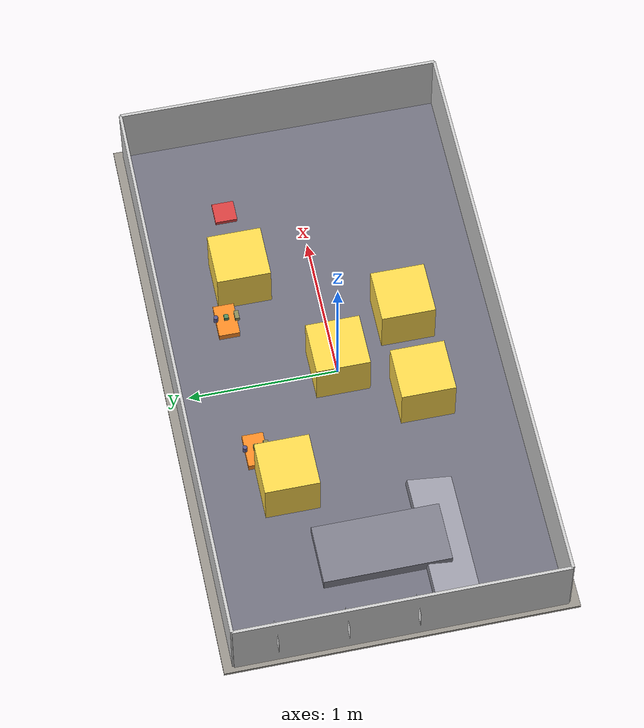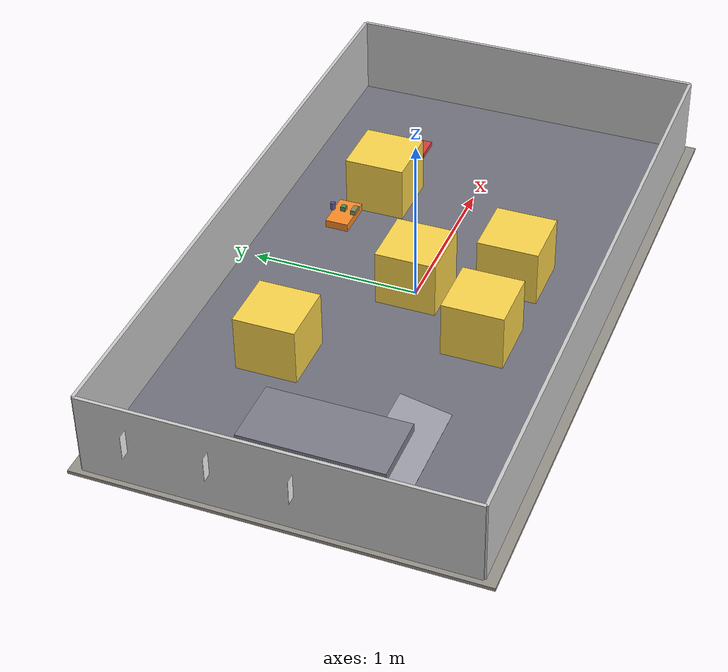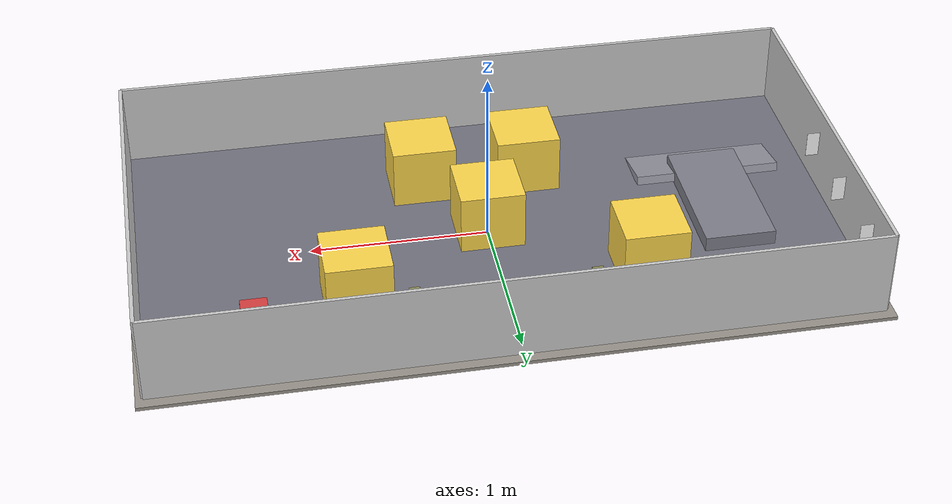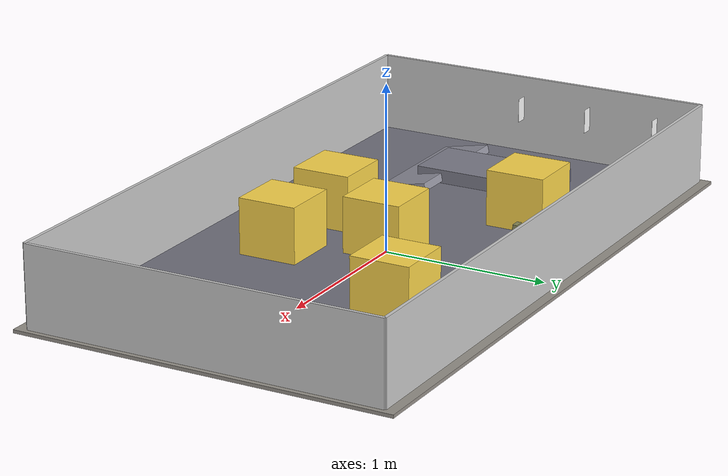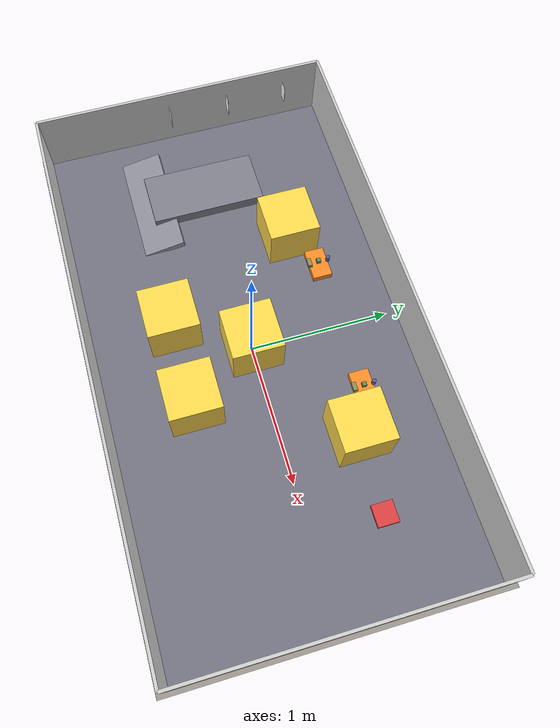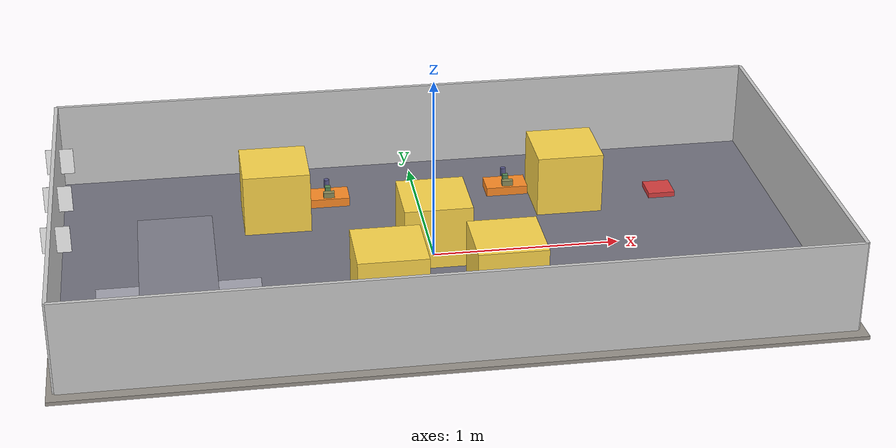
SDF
<?xml version="1.0" encoding="UTF-8"?>
<!--
  ROSLander 月球探索比赛场景
  场地: 3.92m × 2.16m
  围挡高度: 500mm
  参考: 第28届CRAIC机器人任务挑战赛（复合机器人月球探索）线上比赛规则
-->
<sdf version="1.6">
  <world name="moon_exploration">

    <!-- 物理参数                                     -->
    <physics type="ode">
      <max_step_size>0.001</max_step_size>
      <real_time_factor>1</real_time_factor>
      <real_time_update_rate>1000</real_time_update_rate>
      <gravity>0 0 -9.81</gravity>
    </physics>

    <!-- 光照（模拟月球环境）                          -->
    <scene>
      <ambient>0.3 0.3 0.35 1.0</ambient>
      <background>0.05 0.05 0.1 1.0</background>
      <shadows>true</shadows>
    </scene>

    <!-- 太阳光 -->
    <light name="sun" type="directional">
      <pose>5 5 10 0 0 0</pose>
      <diffuse>0.8 0.8 0.85 1</diffuse>
      <specular>0.3 0.3 0.35 1</specular>
      <direction>-0.5 -0.5 -1</direction>
      <cast_shadows>true</cast_shadows>
    </light>

    <!-- 地面 - 月球表面                              -->
    <model name="moon_ground">
      <static>true</static>
      <pose>0 0 0 0 0 0</pose>
      <link name="ground_link">
        <collision name="ground_collision">
          <geometry>
            <box>
              <size>4.0 2.3 0.02</size>
            </box>
          </geometry>
          <surface>
            <friction>
              <ode>
                <mu>0.8</mu>
                <mu2>0.8</mu2>
              </ode>
            </friction>
          </surface>
        </collision>
        <visual name="ground_visual">
          <geometry>
            <box>
              <size>4.0 2.3 0.02</size>
            </box>
          </geometry>
          <material>
            <ambient>0.5 0.48 0.45 1</ambient>
            <diffuse>0.6 0.58 0.55 1</diffuse>
            <specular>0.1 0.1 0.1 1</specular>
          </material>
        </visual>
      </link>
    </model>

    <!-- 月球探索地图（无纺布 - 视觉标记）            -->
    <model name="moon_map">
      <static>true</static>
      <pose>0 0 0.021 0 0 0</pose>
      <link name="map_link">
        <visual name="map_visual">
          <geometry>
            <box>
              <size>3.92 2.16 0.001</size>
            </box>
          </geometry>
          <material>
            <ambient>0.35 0.35 0.4 1</ambient>
            <diffuse>0.45 0.45 0.5 1</diffuse>
            <specular>0.05 0.05 0.05 1</specular>
          </material>
        </visual>
      </link>
    </model>

    <!-- 围挡 - 扁铝型材 (500mm高)                    -->
    <!-- 长边1 (X: -1.96, Y: -1.08 to 1.08) -->
    <model name="wall_left">
      <static>true</static>
      <pose>-1.96 0 0.25 0 0 0</pose>
      <link name="link">
        <collision name="collision">
          <geometry><box><size>0.02 2.16 0.5</size></box></geometry>
        </collision>
        <visual name="visual">
          <geometry><box><size>0.02 2.16 0.5</size></box></geometry>
          <material>
            <ambient>0.7 0.7 0.7 1</ambient>
            <diffuse>0.8 0.8 0.8 1</diffuse>
          </material>
        </visual>
      </link>
    </model>

    <!-- 长边2 -->
    <model name="wall_right">
      <static>true</static>
      <pose>1.96 0 0.25 0 0 0</pose>
      <link name="link">
        <collision name="collision">
          <geometry><box><size>0.02 2.16 0.5</size></box></geometry>
        </collision>
        <visual name="visual">
          <geometry><box><size>0.02 2.16 0.5</size></box></geometry>
          <material>
            <ambient>0.7 0.7 0.7 1</ambient>
            <diffuse>0.8 0.8 0.8 1</diffuse>
          </material>
        </visual>
      </link>
    </model>

    <!-- 短边1 -->
    <model name="wall_top">
      <static>true</static>
      <pose>0 1.08 0.25 0 0 0</pose>
      <link name="link">
        <collision name="collision">
          <geometry><box><size>3.92 0.02 0.5</size></box></geometry>
        </collision>
        <visual name="visual">
          <geometry><box><size>3.92 0.02 0.5</size></box></geometry>
          <material>
            <ambient>0.7 0.7 0.7 1</ambient>
            <diffuse>0.8 0.8 0.8 1</diffuse>
          </material>
        </visual>
      </link>
    </model>

    <!-- 短边2 -->
    <model name="wall_bottom">
      <static>true</static>
      <pose>0 -1.08 0.25 0 0 0</pose>
      <link name="link">
        <collision name="collision">
          <geometry><box><size>3.92 0.02 0.5</size></box></geometry>
        </collision>
        <visual name="visual">
          <geometry><box><size>3.92 0.02 0.5</size></box></geometry>
          <material>
            <ambient>0.7 0.7 0.7 1</ambient>
            <diffuse>0.8 0.8 0.8 1</diffuse>
          </material>
        </visual>
      </link>
    </model>

    <!-- 道具区：以下道具的具体位置根据比赛俯视图估算  -->
    <!-- 用户需根据实际地图在 Gazebo 中微调           -->

    <!-- ---- 月球基地（斜坡平台）837×400×105mm ---- -->
    <!-- 放在场地一侧，机器人出发位置 -->
    <model name="moon_base">
      <static>true</static>
      <pose>-1.35 0 0.0525 0 0 -1.5708</pose>
      <link name="base_link">
        <collision name="collision">
          <geometry><box><size>0.837 0.4 0.105</size></box></geometry>
          <surface>
            <friction><ode><mu>0.6</mu><mu2>0.6</mu2></ode></friction>
          </surface>
        </collision>
        <visual name="visual">
          <geometry><box><size>0.837 0.4 0.105</size></box></geometry>
          <material>
            <ambient>0.4 0.4 0.45 1</ambient>
            <diffuse>0.5 0.5 0.55 1</diffuse>
          </material>
        </visual>
      </link>
    </model>

    <!-- 斜坡（放在月球基地下方） -->
    <model name="moon_base_ramp">
      <static>true</static>
      <pose>-1.35 -0.4 0.03 0.2 0 0</pose>
      <link name="ramp_link">
        <collision name="collision">
          <geometry><box><size>0.837 0.3 0.05</size></box></geometry>
          <surface>
            <friction><ode><mu>0.7</mu><mu2>0.7</mu2></ode></friction>
          </surface>
        </collision>
        <visual name="visual">
          <geometry><box><size>0.837 0.3 0.05</size></box></geometry>
          <material>
            <ambient>0.5 0.5 0.55 1</ambient>
            <diffuse>0.6 0.6 0.65 1</diffuse>
          </material>
        </visual>
      </link>
    </model>

    <!-- ---- 月球资源库（收纳盒）148×148×50mm ---- -->
    <model name="storage_box">
      <static>true</static>
      <pose>1.35 0.5 0.025 0 0 0</pose>
      <link name="box_link">
        <collision name="collision">
          <geometry><box><size>0.148 0.148 0.05</size></box></geometry>
        </collision>
        <visual name="visual">
          <geometry><box><size>0.148 0.148 0.05</size></box></geometry>
          <material>
            <ambient>0.8 0.2 0.2 1</ambient>
            <diffuse>0.85 0.25 0.25 1</diffuse>
          </material>
        </visual>
      </link>
    </model>

    <!-- ---- 固定障碍物（360×360×360mm）3个 ---- -->
    <model name="fixed_obstacle_1">
      <static>true</static>
      <pose>-0.3 -0.5 0.18 0 0 0</pose>
      <link name="link">
        <collision name="collision">
          <geometry><box><size>0.36 0.36 0.36</size></box></geometry>
        </collision>
        <visual name="visual">
          <geometry><box><size>0.36 0.36 0.36</size></box></geometry>
          <material>
            <ambient>1 0.8 0.2 1</ambient>
            <diffuse>1 0.85 0.3 1</diffuse>
          </material>
        </visual>
      </link>
    </model>

    <model name="fixed_obstacle_2">
      <static>true</static>
      <pose>0.3 -0.5 0.18 0 0 0</pose>
      <link name="link">
        <collision name="collision">
          <geometry><box><size>0.36 0.36 0.36</size></box></geometry>
        </collision>
        <visual name="visual">
          <geometry><box><size>0.36 0.36 0.36</size></box></geometry>
          <material>
            <ambient>1 0.8 0.2 1</ambient>
            <diffuse>1 0.85 0.3 1</diffuse>
          </material>
        </visual>
      </link>
    </model>

    <model name="fixed_obstacle_3">
      <static>true</static>
      <pose>0 0 0.18 0 0 0</pose>
      <link name="link">
        <collision name="collision">
          <geometry><box><size>0.36 0.36 0.36</size></box></geometry>
        </collision>
        <visual name="visual">
          <geometry><box><size>0.36 0.36 0.36</size></box></geometry>
          <material>
            <ambient>1 0.8 0.2 1</ambient>
            <diffuse>1 0.85 0.3 1</diffuse>
          </material>
        </visual>
      </link>
    </model>

    <!-- ---- 随机障碍物位置（数字格1-5，示例2个） ---- -->
    <model name="random_obstacle_1">
      <static>true</static>
      <pose>-0.8 0.5 0.18 0 0 0</pose>
      <link name="link">
        <collision name="collision">
          <geometry><box><size>0.36 0.36 0.36</size></box></geometry>
        </collision>
        <visual name="visual">
          <geometry><box><size>0.36 0.36 0.36</size></box></geometry>
          <material>
            <ambient>1 0.8 0.2 1</ambient>
            <diffuse>1 0.85 0.3 1</diffuse>
          </material>
        </visual>
      </link>
    </model>

    <model name="random_obstacle_2">
      <static>true</static>
      <pose>0.8 0.5 0.18 0 0 0</pose>
      <link name="link">
        <collision name="collision">
          <geometry><box><size>0.36 0.36 0.36</size></box></geometry>
        </collision>
        <visual name="visual">
          <geometry><box><size>0.36 0.36 0.36</size></box></geometry>
          <material>
            <ambient>1 0.8 0.2 1</ambient>
            <diffuse>1 0.85 0.3 1</diffuse>
          </material>
        </visual>
      </link>
    </model>

    <!-- ---- 矿石采集平台（EVA方块）230×140×70mm 2个 ---- -->
    <model name="ore_platform_1">
      <static>true</static>
      <pose>-0.5 0.65 0.035 0 0 0</pose>
      <link name="link">
        <collision name="collision">
          <geometry><box><size>0.23 0.14 0.07</size></box></geometry>
        </collision>
        <visual name="visual">
          <geometry><box><size>0.23 0.14 0.07</size></box></geometry>
          <material>
            <ambient>1 0.5 0.1 1</ambient>
            <diffuse>1 0.55 0.15 1</diffuse>
          </material>
        </visual>
      </link>
    </model>

    <model name="ore_platform_2">
      <static>true</static>
      <pose>0.5 0.65 0.035 0 0 0</pose>
      <link name="link">
        <collision name="collision">
          <geometry><box><size>0.23 0.14 0.07</size></box></geometry>
        </collision>
        <visual name="visual">
          <geometry><box><size>0.23 0.14 0.07</size></box></geometry>
          <material>
            <ambient>1 0.5 0.1 1</ambient>
            <diffuse>1 0.55 0.15 1</diffuse>
          </material>
        </visual>
      </link>
    </model>

    <!-- ---- 矿石道具：平台1 ---- -->
    <!-- 正方体 30×30×30mm -->
    <model name="ore_cube_1">
      <static>false</static>
      <pose>-0.5 0.65 0.1 0 0 0</pose>
      <link name="link">
        <collision name="collision">
          <geometry><box><size>0.03 0.03 0.03</size></box></geometry>
          <surface>
            <friction><ode><mu>0.6</mu><mu2>0.6</mu2></ode></friction>
          </surface>
        </collision>
        <visual name="visual">
          <geometry><box><size>0.03 0.03 0.03</size></box></geometry>
          <material>
            <ambient>0.3 0.5 0.3 1</ambient>
            <diffuse>0.35 0.55 0.35 1</diffuse>
          </material>
        </visual>
      </link>
    </model>

    <!-- 长方体 30×30×60mm -->
    <model name="ore_cuboid_1">
      <static>false</static>
      <pose>-0.5 0.58 0.1 0 0 0</pose>
      <link name="link">
        <collision name="collision">
          <geometry><box><size>0.06 0.03 0.03</size></box></geometry>
        </collision>
        <visual name="visual">
          <geometry><box><size>0.06 0.03 0.03</size></box></geometry>
          <material>
            <ambient>0.5 0.5 0.3 1</ambient>
            <diffuse>0.55 0.55 0.35 1</diffuse>
          </material>
        </visual>
      </link>
    </model>

    <!-- 圆柱体 直径30mm 高45mm -->
    <model name="ore_cylinder_1">
      <static>false</static>
      <pose>-0.5 0.72 0.1 0 0 0</pose>
      <link name="link">
        <collision name="collision">
          <geometry><cylinder><radius>0.015</radius><length>0.045</length></cylinder></geometry>
        </collision>
        <visual name="visual">
          <geometry><cylinder><radius>0.015</radius><length>0.045</length></cylinder></geometry>
          <material>
            <ambient>0.3 0.3 0.5 1</ambient>
            <diffuse>0.35 0.35 0.55 1</diffuse>
          </material>
        </visual>
      </link>
    </model>

    <!-- ---- 矿石道具：平台2 ---- -->
    <model name="ore_cube_2">
      <static>false</static>
      <pose>0.5 0.65 0.1 0 0 0</pose>
      <link name="link">
        <collision name="collision">
          <geometry><box><size>0.03 0.03 0.03</size></box></geometry>
        </collision>
        <visual name="visual">
          <geometry><box><size>0.03 0.03 0.03</size></box></geometry>
          <material>
            <ambient>0.3 0.5 0.3 1</ambient>
            <diffuse>0.35 0.55 0.35 1</diffuse>
          </material>
        </visual>
      </link>
    </model>

    <model name="ore_cuboid_2">
      <static>false</static>
      <pose>0.5 0.58 0.1 0 0 0</pose>
      <link name="link">
        <collision name="collision">
          <geometry><box><size>0.06 0.03 0.03</size></box></geometry>
        </collision>
        <visual name="visual">
          <geometry><box><size>0.06 0.03 0.03</size></box></geometry>
          <material>
            <ambient>0.5 0.5 0.3 1</ambient>
            <diffuse>0.55 0.55 0.35 1</diffuse>
          </material>
        </visual>
      </link>
    </model>

    <model name="ore_cylinder_2">
      <static>false</static>
      <pose>0.5 0.72 0.1 0 0 0</pose>
      <link name="link">
        <collision name="collision">
          <geometry><cylinder><radius>0.015</radius><length>0.045</length></cylinder></geometry>
        </collision>
        <visual name="visual">
          <geometry><cylinder><radius>0.015</radius><length>0.045</length></cylinder></geometry>
          <material>
            <ambient>0.3 0.3 0.5 1</ambient>
            <diffuse>0.35 0.35 0.55 1</diffuse>
          </material>
        </visual>
      </link>
    </model>

    <!-- 任务卡片（贴在围挡上）                        -->
    <!-- 任务一卡片: 离地面300mm, 离资源库水平100mm -->
    <model name="task_card_1">
      <static>true</static>
      <pose>-1.95 0.8 0.3 0 1.5708 0</pose>
      <link name="link">
        <visual name="visual">
          <geometry><box><size>0.148 0.002 0.148</size></box></geometry>
          <material>
            <ambient>1 1 1 1</ambient>
            <diffuse>1 1 1 1</diffuse>
          </material>
        </visual>
      </link>
    </model>

    <!-- 任务二卡片 -->
    <model name="task_card_2">
      <static>true</static>
      <pose>-1.95 0.35 0.3 0 1.5708 0</pose>
      <link name="link">
        <visual name="visual">
          <geometry><box><size>0.148 0.002 0.148</size></box></geometry>
          <material>
            <ambient>1 1 1 1</ambient>
            <diffuse>1 1 1 1</diffuse>
          </material>
        </visual>
      </link>
    </model>

    <!-- 任务三卡片 -->
    <model name="task_card_3">
      <static>true</static>
      <pose>-1.95 -0.1 0.3 0 1.5708 0</pose>
      <link name="link">
        <visual name="visual">
          <geometry><box><size>0.148 0.002 0.148</size></box></geometry>
          <material>
            <ambient>1 1 1 1</ambient>
            <diffuse>1 1 1 1</diffuse>
          </material>
        </visual>
      </link>
    </model>

  </world>
</sdf>
